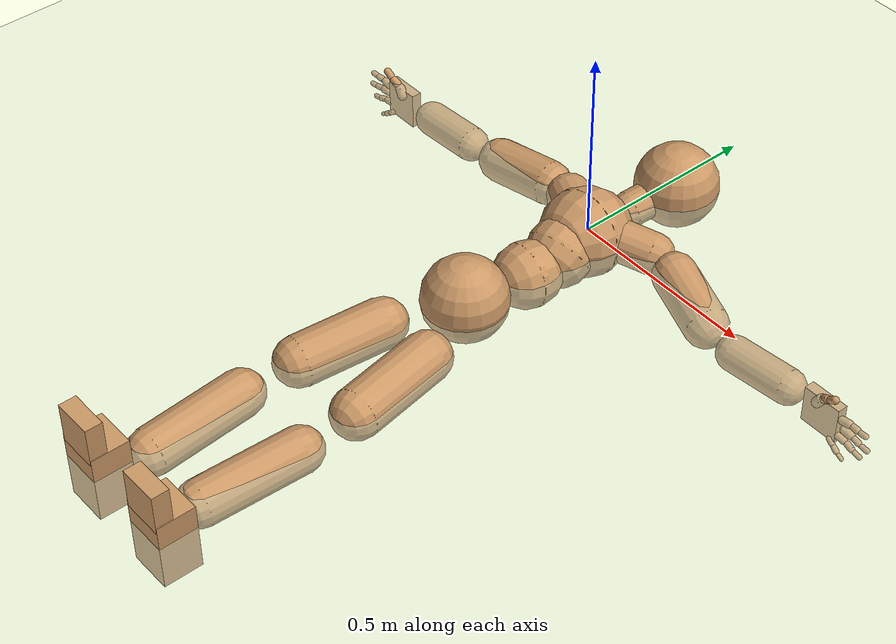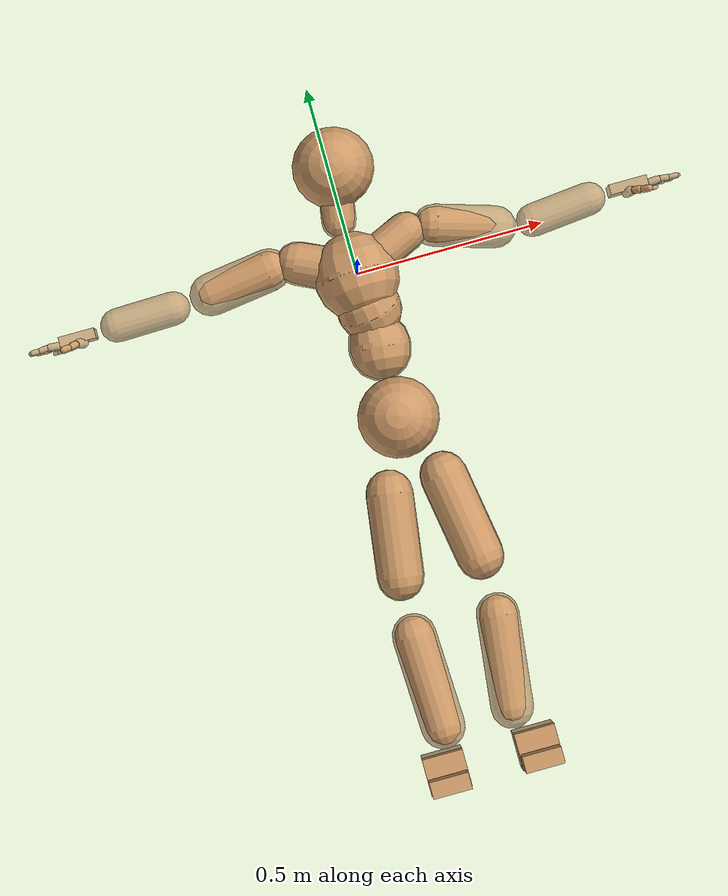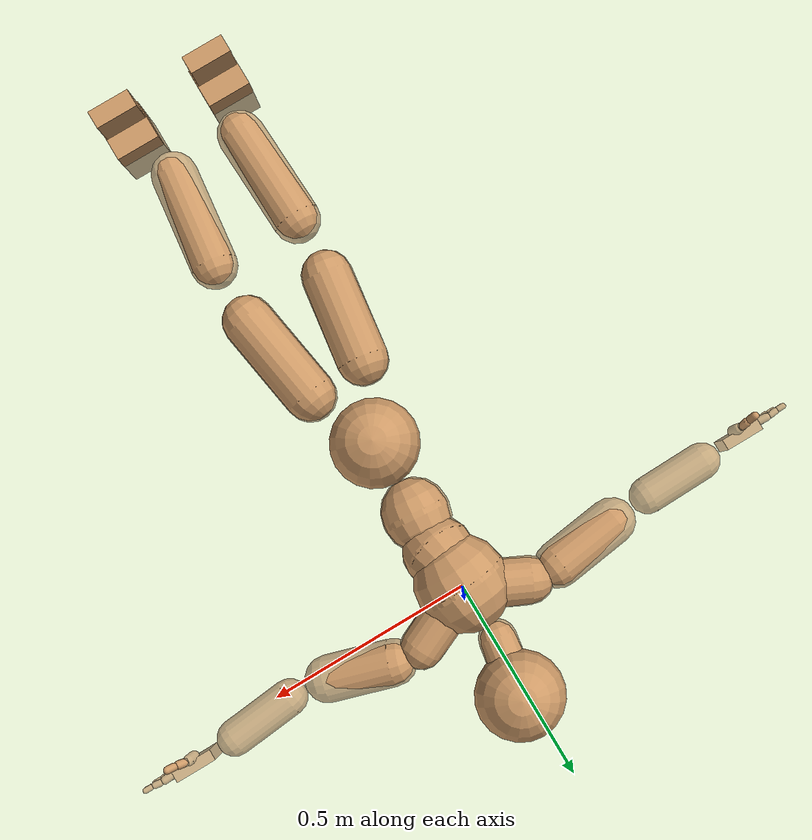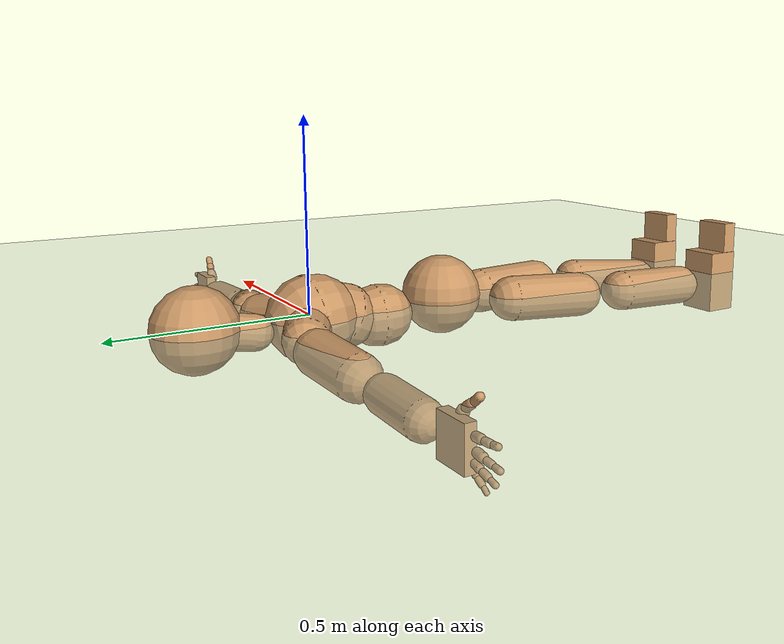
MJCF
<mujoco model="humanoid">
  <compiler coordinate="local"/>
  <default>
    <joint damping="0.0" armature="0.01" stiffness="0.0" limited="true"/>
    <geom conaffinity="1" condim="3" contype="7" margin="0.001" rgba="0.8 0.6 .4 1"/>
  </default>
  <asset>
    <texture type="skybox" builtin="gradient" rgb1=".4 .5 .6" rgb2="0 0 0" width="100" height="100"/>
    <texture builtin="flat" height="1278" mark="cross" markrgb="1 1 1" name="texgeom" random="0.01" rgb1="0.8 0.6 0.4" rgb2="0.8 0.6 0.4" type="cube" width="127"/>
    <texture builtin="checker" height="100" name="texplane" rgb1="0 0 0" rgb2="0.8 0.8 0.8" type="2d" width="100"/>
    <material name="MatPlane" reflectance="0.5" shininess="1" specular="1" texrepeat="60 60" texture="texplane"/>
    <material name="geom" texture="texgeom" texuniform="true"/>
  </asset>
  <worldbody>
    <light cutoff="100" diffuse="1 1 1" dir="-0 0 -1.3" directional="true" exponent="1" pos="0 0 1.3" specular=".1 .1 .1"/>
    <geom conaffinity="1" condim="3" name="floor" pos="0 0 0" rgba="0.8 0.9 0.8 1" size="100 100 .2" type="plane" material="MatPlane"/>
    <body name="Pelvis" pos="0.0031 -0.3909 0.0079">
      <freejoint name="Pelvis"/>
      <geom type="sphere" contype="1" conaffinity="1" density="4629.6296296296305" size="0.1076" pos="0.0000 0.0000 0.0000" name="Pelvis"/>
      <body name="L_Hip" pos="0.0609 -0.0996 -0.0253">
        <joint name="L_Hip_x" type="hinge" pos="0 0 0" axis="1 0 0" user="250 2.5 1 500 10 2" armature="0.01" range="-90.0000 90.0000" damping="0" stiffness="0"/>
        <joint name="L_Hip_y" type="hinge" pos="0 0 0" axis="0 1 0" user="250 2.5 1 500 10 2" armature="0.01" range="-90.0000 90.0000" damping="0" stiffness="0"/>
        <joint name="L_Hip_z" type="hinge" pos="0 0 0" axis="0 0 1" user="250 2.5 1 500 10 2" armature="0.01" range="-90.0000 90.0000" damping="0" stiffness="0"/>
        <geom type="capsule" contype="1" conaffinity="1" density="2040.816327" fromto="0.0122 -0.0765 -0.0008 0.0490 -0.3060 -0.0034" size="0.0635" name="L_Hip"/>
        <body name="L_Knee" pos="0.0612 -0.3826 -0.0042">
          <joint name="L_Knee_x" type="hinge" pos="0 0 0" axis="1 0 0" user="250 2.5 1 500 10 2" armature="0.01" range="-180.0000 180.0000" damping="0" stiffness="0"/>
          <joint name="L_Knee_y" type="hinge" pos="0 0 0" axis="0 1 0" user="250 2.5 1 500 10 2" armature="0.01" range="-5.6250 5.6250" damping="0" stiffness="0"/>
          <joint name="L_Knee_z" type="hinge" pos="0 0 0" axis="0 0 1" user="250 2.5 1 500 10 2" armature="0.01" range="-5.6250 5.6250" damping="0" stiffness="0"/>
          <geom type="capsule" contype="1" conaffinity="1" density="1234.567901" fromto="-0.0093 -0.0822 -0.0064 -0.0374 -0.3286 -0.0257" size="0.0565" name="L_Knee"/>
          <body name="L_Ankle" pos="-0.0467 -0.4108 -0.0322">
            <joint name="L_Ankle_x" type="hinge" pos="0 0 0" axis="1 0 0" user="150 2.5 1 500 10 2" armature="0.01" range="-90.0000 90.0000" damping="0" stiffness="0"/>
            <joint name="L_Ankle_y" type="hinge" pos="0 0 0" axis="0 1 0" user="150 2.5 1 500 10 2" armature="0.01" range="-90.0000 90.0000" damping="0" stiffness="0"/>
            <joint name="L_Ankle_z" type="hinge" pos="0 0 0" axis="0 0 1" user="150 2.5 1 500 10 2" armature="0.01" range="-90.0000 90.0000" damping="0" stiffness="0"/>
            <geom type="box" density="455.938905" pos="0.0450 -0.0298 0.0244" size="0.0542 0.049 0.091" quat="1.0000 0.0000 0.0000 0.0000" name="L_Ankle"/>
            <body name="L_Toe" pos="0.0522 -0.0601 0.1252">
              <joint name="L_Toe_x" type="hinge" pos="0 0 0" axis="1 0 0" user="150 1 1 500 1 1" armature="0.01" range="-90.0000 90.0000" damping="0" stiffness="0"/>
              <joint name="L_Toe_y" type="hinge" pos="0 0 0" axis="0 1 0" user="150 1 1 500 1 1" armature="0.01" range="-45.0000 45.0000" damping="0" stiffness="0"/>
              <joint name="L_Toe_z" type="hinge" pos="0 0 0" axis="0 0 1" user="150 1 1 500 1 1" armature="0.01" range="-45.0000 45.0000" damping="0" stiffness="0"/>
              <geom type="box" density="422.351352" pos="-0.0072 0.0032 0.0272" size="0.0518 0.022 0.053" quat="1.0000 0.0000 0.0000 0.0000" name="L_Toe"/>
            </body>
          </body>
        </body>
      </body>
      <body name="R_Hip" pos="-0.0658 -0.1125 -0.0188">
        <joint name="R_Hip_x" type="hinge" pos="0 0 0" axis="1 0 0" user="250 2.5 1 500 10 2" armature="0.01" range="-90.0000 90.0000" damping="0" stiffness="0"/>
        <joint name="R_Hip_y" type="hinge" pos="0 0 0" axis="0 1 0" user="250 2.5 1 500 10 2" armature="0.01" range="-90.0000 90.0000" damping="0" stiffness="0"/>
        <joint name="R_Hip_z" type="hinge" pos="0 0 0" axis="0 0 1" user="250 2.5 1 500 10 2" armature="0.01" range="-90.0000 90.0000" damping="0" stiffness="0"/>
        <geom type="capsule" contype="1" conaffinity="1" density="2040.816327" fromto="-0.0101 -0.0729 -0.0027 -0.0402 -0.2915 -0.0107" size="0.0628" name="R_Hip"/>
        <body name="R_Knee" pos="-0.0503 -0.3643 -0.0134">
          <joint name="R_Knee_x" type="hinge" pos="0 0 0" axis="1 0 0" user="250 2.5 1 500 10 2" armature="0.01" range="-180.0000 180.0000" damping="0" stiffness="0"/>
          <joint name="R_Knee_y" type="hinge" pos="0 0 0" axis="0 1 0" user="250 2.5 1 500 10 2" armature="0.01" range="-5.6250 5.6250" damping="0" stiffness="0"/>
          <joint name="R_Knee_z" type="hinge" pos="0 0 0" axis="0 0 1" user="250 2.5 1 500 10 2" armature="0.01" range="-5.6250 5.6250" damping="0" stiffness="0"/>
          <geom type="capsule" contype="1" conaffinity="1" density="1234.567901" fromto="0.0032 -0.0838 -0.0039 0.0128 -0.3350 -0.0157" size="0.0582" name="R_Knee"/>
          <body name="R_Ankle" pos="0.0159 -0.4188 -0.0196">
            <joint name="R_Ankle_x" type="hinge" pos="0 0 0" axis="1 0 0" user="150 1 1 500 10 2" armature="0.01" range="-90.0000 90.0000" damping="0" stiffness="0"/>
            <joint name="R_Ankle_y" type="hinge" pos="0 0 0" axis="0 1 0" user="150 1 1 500 10 2" armature="0.01" range="-90.0000 90.0000" damping="0" stiffness="0"/>
            <joint name="R_Ankle_z" type="hinge" pos="0 0 0" axis="0 0 1" user="150 1 1 500 10 2" armature="0.01" range="-90.0000 90.0000" damping="0" stiffness="0"/>
            <geom type="box" density="455.934924" pos="-0.0265 -0.0272 0.0145" size="0.0542 0.049 0.091" quat="1.0000 0.0000 0.0000 0.0000" name="R_Ankle"/>
            <body name="R_Toe" pos="-0.0423 -0.0602 0.126">
              <joint name="R_Toe_x" type="hinge" pos="0 0 0" axis="1 0 0" user="150 1 1 500 1 1" armature="0.01" range="-90.0000 90.0000" damping="0" stiffness="0"/>
              <joint name="R_Toe_y" type="hinge" pos="0 0 0" axis="0 1 0" user="150 1 1 500 1 1" armature="0.01" range="-45.0000 45.0000" damping="0" stiffness="0"/>
              <joint name="R_Toe_z" type="hinge" pos="0 0 0" axis="0 0 1" user="150 1 1 500 1 1" armature="0.01" range="-45.0000 45.0000" damping="0" stiffness="0"/>
              <geom type="box" density="422.346144" pos="0.0158 0.0059 0.0166" size="0.0518 0.022 0.053" quat="1.0000 0.0000 0.0000 0.0000" name="R_Toe"/>
            </body>
          </body>
        </body>
      </body>
      <body name="Torso" pos="-0.0032 0.1188 -0.032">
        <joint name="Torso_x" type="hinge" pos="0 0 0" axis="1 0 0" user="500 5 1 500 10 2" armature="0.01" range="-60.0000 60.0000" damping="0" stiffness="0"/>
        <joint name="Torso_y" type="hinge" pos="0 0 0" axis="0 1 0" user="500 5 1 500 10 2" armature="0.01" range="-60.0000 60.0000" damping="0" stiffness="0"/>
        <joint name="Torso_z" type="hinge" pos="0 0 0" axis="0 0 1" user="500 5 1 500 10 2" armature="0.01" range="-60.0000 60.0000" damping="0" stiffness="0"/>
        <geom type="capsule" contype="1" conaffinity="1" density="2040.816327" fromto="0.0054 0.0660 -0.0027 0.0066 0.0807 -0.0033" size="0.0826" name="Torso"/>
        <body name="Spine" pos="0.012 0.1467 -0.006">
          <joint name="Spine_x" type="hinge" pos="0 0 0" axis="1 0 0" user="500 5 1 500 10 2" armature="0.01" range="-60.0000 60.0000" damping="0" stiffness="0"/>
          <joint name="Spine_y" type="hinge" pos="0 0 0" axis="0 1 0" user="500 5 1 500 10 2" armature="0.01" range="-60.0000 60.0000" damping="0" stiffness="0"/>
          <joint name="Spine_z" type="hinge" pos="0 0 0" axis="0 0 1" user="500 5 1 500 10 2" armature="0.01" range="-60.0000 60.0000" damping="0" stiffness="0"/>
          <geom type="capsule" contype="1" conaffinity="1" density="2040.816327" fromto="-0.0056 0.0272 0.0135 -0.0069 0.0332 0.0166" size="0.0857" name="Spine"/>
          <body name="Chest" pos="-0.0125 0.0604 0.0301">
            <joint name="Chest_x" type="hinge" pos="0 0 0" axis="1 0 0" user="500 5 1 500 10 2" armature="0.01" range="-60.0000 60.0000" damping="0" stiffness="0"/>
            <joint name="Chest_y" type="hinge" pos="0 0 0" axis="0 1 0" user="500 5 1 500 10 2" armature="0.01" range="-60.0000 60.0000" damping="0" stiffness="0"/>
            <joint name="Chest_z" type="hinge" pos="0 0 0" axis="0 0 1" user="500 5 1 500 10 2" armature="0.01" range="-60.0000 60.0000" damping="0" stiffness="0"/>
            <geom type="capsule" contype="1" conaffinity="1" density="2040.816327" fromto="-0.0026 0.0541 -0.0064 -0.0032 0.0662 -0.0079" size="0.112" name="Chest"/>
            <body name="Neck" pos="-0.0141 0.1783 -0.028">
              <joint name="Neck_x" type="hinge" pos="0 0 0" axis="1 0 0" user="150 1 1 250 50 4" armature="0.01" range="-180.0000 180.0000" damping="0" stiffness="0"/>
              <joint name="Neck_y" type="hinge" pos="0 0 0" axis="0 1 0" user="150 1 1 250 50 4" armature="0.01" range="-180.0000 180.0000" damping="0" stiffness="0"/>
              <joint name="Neck_z" type="hinge" pos="0 0 0" axis="0 0 1" user="150 1 1 250 50 4" armature="0.01" range="-180.0000 180.0000" damping="0" stiffness="0"/>
              <geom type="capsule" contype="1" conaffinity="1" density="1000" fromto="0.0056 0.0345 0.0052 0.0222 0.1380 0.0207" size="0.0464" name="Neck"/>
              <body name="Head" pos="0.0278 0.1724 0.0258">
                <joint name="Head_x" type="hinge" pos="0 0 0" axis="1 0 0" user="150 1 1 250 50 4" armature="0.01" range="-90.0000 90.0000" damping="0" stiffness="0"/>
                <joint name="Head_y" type="hinge" pos="0 0 0" axis="0 1 0" user="150 1 1 250 50 4" armature="0.01" range="-90.0000 90.0000" damping="0" stiffness="0"/>
                <joint name="Head_z" type="hinge" pos="0 0 0" axis="0 0 1" user="150 1 1 250 50 4" armature="0.01" range="-90.0000 90.0000" damping="0" stiffness="0"/>
                <geom type="sphere" contype="1" conaffinity="1" density="1000" size="0.1078" pos="0.0000 0.0000 0.0000" name="Head"/>
              </body>
            </body>
            <body name="L_Thorax" pos="0.0489 0.0917 -0.0041">
              <joint name="L_Thorax_x" type="hinge" pos="0 0 0" axis="1 0 0" user="200 2 1 500 50 4" armature="0.01" range="-180.0000 180.0000" damping="0" stiffness="0"/>
              <joint name="L_Thorax_y" type="hinge" pos="0 0 0" axis="0 1 0" user="200 2 1 500 50 4" armature="0.01" range="-180.0000 180.0000" damping="0" stiffness="0"/>
              <joint name="L_Thorax_z" type="hinge" pos="0 0 0" axis="0 0 1" user="200 2 1 500 50 4" armature="0.01" range="-180.0000 180.0000" damping="0" stiffness="0"/>
              <geom type="capsule" contype="1" conaffinity="1" density="1000" fromto="0.0261 0.0119 -0.0037 0.1042 0.0475 -0.0149" size="0.0531" name="L_Thorax"/>
              <body name="L_Shoulder" pos="0.1303 0.0594 -0.0186">
                <joint name="L_Shoulder_x" type="hinge" pos="0 0 0" axis="1 0 0" user="200 2 1 500 50 4" armature="0.01" range="-180.0000 180.0000" damping="0" stiffness="0"/>
                <joint name="L_Shoulder_y" type="hinge" pos="0 0 0" axis="0 1 0" user="200 2 1 500 50 4" armature="0.01" range="-180.0000 180.0000" damping="0" stiffness="0"/>
                <joint name="L_Shoulder_z" type="hinge" pos="0 0 0" axis="0 0 1" user="200 2 1 500 50 4" armature="0.01" range="-180.0000 180.0000" damping="0" stiffness="0"/>
                <geom type="capsule" contype="1" conaffinity="1" density="1000" fromto="0.0510 -0.0147 -0.0093 0.2041 -0.0589 -0.0370" size="0.0568" name="L_Shoulder"/>
                <body name="L_Elbow" pos="0.2552 -0.0737 -0.0463">
                  <joint name="L_Elbow_x" type="hinge" pos="0 0 0" axis="1 0 0" user="150 1 1 150 10 2" armature="0.01" range="-720.0000 720.0000" damping="0" stiffness="0"/>
                  <joint name="L_Elbow_y" type="hinge" pos="0 0 0" axis="0 1 0" user="150 1 1 150 10 2" armature="0.01" range="-720.0000 720.0000" damping="0" stiffness="0"/>
                  <joint name="L_Elbow_z" type="hinge" pos="0 0 0" axis="0 0 1" user="150 1 1 150 10 2" armature="0.01" range="-720.0000 720.0000" damping="0" stiffness="0"/>
                  <geom type="capsule" contype="1" conaffinity="1" density="1000" fromto="0.0520 0.0052 0.0002 0.2081 0.0207 0.0010" size="0.0445" name="L_Elbow"/>
                  <body name="L_Wrist" pos="0.2601 0.0258 0.0012">
                    <joint name="L_Wrist_x" type="hinge" pos="0 0 0" axis="1 0 0" user="100 1 1 150 1 1" armature="0.01" range="-180.0000 180.0000" damping="0" stiffness="0"/>
                    <joint name="L_Wrist_y" type="hinge" pos="0 0 0" axis="0 1 0" user="100 1 1 150 1 1" armature="0.01" range="-180.0000 180.0000" damping="0" stiffness="0"/>
                    <joint name="L_Wrist_z" type="hinge" pos="0 0 0" axis="0 0 1" user="100 1 1 150 1 1" armature="0.01" range="-180.0000 180.0000" damping="0" stiffness="0"/>
                    <geom type="box" density="1218.213766" pos="0.0555 -0.0014 -0.0027" size="0.0512 0.0136 0.0501" quat="1.0000 0.0000 0.0000 0.0000" name="L_Wrist"/>
                    <body name="L_Index1" pos="0.1078 -0.0084 0.0215">
                      <joint name="L_Index1_x" type="hinge" pos="0 0 0" axis="1 0 0" user="100 10 1 150" armature="0.01" range="-180.0000 180.0000" damping="0" stiffness="0"/>
                      <joint name="L_Index1_y" type="hinge" pos="0 0 0" axis="0 1 0" user="100 10 1 150" armature="0.01" range="-180.0000 180.0000" damping="0" stiffness="0"/>
                      <joint name="L_Index1_z" type="hinge" pos="0 0 0" axis="0 0 1" user="100 10 1 150" armature="0.01" range="-180.0000 180.0000" damping="0" stiffness="0"/>
                      <geom type="capsule" contype="1" conaffinity="1" density="1000" fromto="0.0067 0.0005 0.0006 0.0267 0.0021 0.0023" size="0.01" name="L_Index1"/>
                      <body name="L_Index2" pos="0.0333 0.0026 0.0029">
                        <joint name="L_Index2_x" type="hinge" pos="0 0 0" axis="1 0 0" user="100 10 1 150" armature="0.01" range="-180.0000 180.0000" damping="0" stiffness="0"/>
                        <joint name="L_Index2_y" type="hinge" pos="0 0 0" axis="0 1 0" user="100 10 1 150" armature="0.01" range="-180.0000 180.0000" damping="0" stiffness="0"/>
                        <joint name="L_Index2_z" type="hinge" pos="0 0 0" axis="0 0 1" user="100 10 1 150" armature="0.01" range="-180.0000 180.0000" damping="0" stiffness="0"/>
                        <geom type="capsule" contype="1" conaffinity="1" density="1000" fromto="0.0047 -0.0005 -0.0001 0.0187 -0.0020 -0.0002" size="0.0082" name="L_Index2"/>
                        <body name="L_Index3" pos="0.0234 -0.0025 -0.0003">
                          <joint name="L_Index3_x" type="hinge" pos="0 0 0" axis="1 0 0" user="100 10 1 150" armature="0.01" range="-180.0000 180.0000" damping="0" stiffness="0"/>
                          <joint name="L_Index3_y" type="hinge" pos="0 0 0" axis="0 1 0" user="100 10 1 150" armature="0.01" range="-180.0000 180.0000" damping="0" stiffness="0"/>
                          <joint name="L_Index3_z" type="hinge" pos="0 0 0" axis="0 0 1" user="100 10 1 150" armature="0.01" range="-180.0000 180.0000" damping="0" stiffness="0"/>
                          <geom type="capsule" contype="1" conaffinity="1" density="1000" fromto="0.0051 -0.0001 0.0003 0.0203 -0.0004 0.0014" size="0.0069" name="L_Index3"/>
                        </body>
                      </body>
                    </body>
                    <body name="L_Middle1" pos="0.1159 -0.0058 -0.0039">
                      <joint name="L_Middle1_x" type="hinge" pos="0 0 0" axis="1 0 0" user="100 10 1 150" armature="0.01" range="-180.0000 180.0000" damping="0" stiffness="0"/>
                      <joint name="L_Middle1_y" type="hinge" pos="0 0 0" axis="0 1 0" user="100 10 1 150" armature="0.01" range="-180.0000 180.0000" damping="0" stiffness="0"/>
                      <joint name="L_Middle1_z" type="hinge" pos="0 0 0" axis="0 0 1" user="100 10 1 150" armature="0.01" range="-180.0000 180.0000" damping="0" stiffness="0"/>
                      <geom type="capsule" contype="1" conaffinity="1" density="1000" fromto="0.0064 0.0002 -0.0008 0.0256 0.0007 -0.0033" size="0.0103" name="L_Middle1"/>
                      <body name="L_Middle2" pos="0.032 0.0009 -0.0042">
                        <joint name="L_Middle2_x" type="hinge" pos="0 0 0" axis="1 0 0" user="100 10 1 150" armature="0.01" range="-180.0000 180.0000" damping="0" stiffness="0"/>
                        <joint name="L_Middle2_y" type="hinge" pos="0 0 0" axis="0 1 0" user="100 10 1 150" armature="0.01" range="-180.0000 180.0000" damping="0" stiffness="0"/>
                        <joint name="L_Middle2_z" type="hinge" pos="0 0 0" axis="0 0 1" user="100 10 1 150" armature="0.01" range="-180.0000 180.0000" damping="0" stiffness="0"/>
                        <geom type="capsule" contype="1" conaffinity="1" density="1000" fromto="0.0049 -0.0004 -0.0009 0.0195 -0.0018 -0.0035" size="0.0076" name="L_Middle2"/>
                        <body name="L_Middle3" pos="0.0244 -0.0022 -0.0044">
                          <joint name="L_Middle3_x" type="hinge" pos="0 0 0" axis="1 0 0" user="100 10 1 150" armature="0.01" range="-180.0000 180.0000" damping="0" stiffness="0"/>
                          <joint name="L_Middle3_y" type="hinge" pos="0 0 0" axis="0 1 0" user="100 10 1 150" armature="0.01" range="-180.0000 180.0000" damping="0" stiffness="0"/>
                          <joint name="L_Middle3_z" type="hinge" pos="0 0 0" axis="0 0 1" user="100 10 1 150" armature="0.01" range="-180.0000 180.0000" damping="0" stiffness="0"/>
                          <geom type="capsule" contype="1" conaffinity="1" density="1000" fromto="0.0053 -0.0000 -0.0005 0.0211 -0.0002 -0.0019" size="0.0066" name="L_Middle3"/>
                        </body>
                      </body>
                    </body>
                    <body name="L_Pinky1" pos="0.0892 -0.0148 -0.0472">
                      <joint name="L_Pinky1_x" type="hinge" pos="0 0 0" axis="1 0 0" user="100 10 1 150" armature="0.01" range="-180.0000 180.0000" damping="0" stiffness="0"/>
                      <joint name="L_Pinky1_y" type="hinge" pos="0 0 0" axis="0 1 0" user="100 10 1 150" armature="0.01" range="-180.0000 180.0000" damping="0" stiffness="0"/>
                      <joint name="L_Pinky1_z" type="hinge" pos="0 0 0" axis="0 0 1" user="100 10 1 150" armature="0.01" range="-180.0000 180.0000" damping="0" stiffness="0"/>
                      <geom type="capsule" contype="1" conaffinity="1" density="1000" fromto="0.0034 -0.0003 -0.0025 0.0135 -0.0011 -0.0101" size="0.0073" name="L_Pinky1"/>
                      <body name="L_Pinky2" pos="0.0168 -0.0014 -0.0126">
                        <joint name="L_Pinky2_x" type="hinge" pos="0 0 0" axis="1 0 0" user="100 10 1 150" armature="0.01" range="-180.0000 180.0000" damping="0" stiffness="0"/>
                        <joint name="L_Pinky2_y" type="hinge" pos="0 0 0" axis="0 1 0" user="100 10 1 150" armature="0.01" range="-180.0000 180.0000" damping="0" stiffness="0"/>
                        <joint name="L_Pinky2_z" type="hinge" pos="0 0 0" axis="0 0 1" user="100 10 1 150" armature="0.01" range="-180.0000 180.0000" damping="0" stiffness="0"/>
                        <geom type="capsule" contype="1" conaffinity="1" density="1000" fromto="0.0033 -0.0004 -0.0023 0.0132 -0.0016 -0.0092" size="0.007" name="L_Pinky2"/>
                        <body name="L_Pinky3" pos="0.0165 -0.002 -0.0115">
                          <joint name="L_Pinky3_x" type="hinge" pos="0 0 0" axis="1 0 0" user="100 10 1 150" armature="0.01" range="-180.0000 180.0000" damping="0" stiffness="0"/>
                          <joint name="L_Pinky3_y" type="hinge" pos="0 0 0" axis="0 1 0" user="100 10 1 150" armature="0.01" range="-180.0000 180.0000" damping="0" stiffness="0"/>
                          <joint name="L_Pinky3_z" type="hinge" pos="0 0 0" axis="0 0 1" user="100 10 1 150" armature="0.01" range="-180.0000 180.0000" damping="0" stiffness="0"/>
                          <geom type="capsule" contype="1" conaffinity="1" density="1000" fromto="0.0037 -0.0000 -0.0019 0.0148 -0.0000 -0.0076" size="0.0052" name="L_Pinky3"/>
                        </body>
                      </body>
                    </body>
                    <body name="L_Ring1" pos="0.1035 -0.009 -0.0294">
                      <joint name="L_Ring1_x" type="hinge" pos="0 0 0" axis="1 0 0" user="100 10 1 150" armature="0.01" range="-180.0000 180.0000" damping="0" stiffness="0"/>
                      <joint name="L_Ring1_y" type="hinge" pos="0 0 0" axis="0 1 0" user="100 10 1 150" armature="0.01" range="-180.0000 180.0000" damping="0" stiffness="0"/>
                      <joint name="L_Ring1_z" type="hinge" pos="0 0 0" axis="0 0 1" user="100 10 1 150" armature="0.01" range="-180.0000 180.0000" damping="0" stiffness="0"/>
                      <geom type="capsule" contype="1" conaffinity="1" density="1000" fromto="0.0060 0.0003 -0.0011 0.0238 0.0013 -0.0044" size="0.0087" name="L_Ring1"/>
                      <body name="L_Ring2" pos="0.0298 0.0016 -0.0055">
                        <joint name="L_Ring2_x" type="hinge" pos="0 0 0" axis="1 0 0" user="100 10 1 150" armature="0.01" range="-180.0000 180.0000" damping="0" stiffness="0"/>
                        <joint name="L_Ring2_y" type="hinge" pos="0 0 0" axis="0 1 0" user="100 10 1 150" armature="0.01" range="-180.0000 180.0000" damping="0" stiffness="0"/>
                        <joint name="L_Ring2_z" type="hinge" pos="0 0 0" axis="0 0 1" user="100 10 1 150" armature="0.01" range="-180.0000 180.0000" damping="0" stiffness="0"/>
                        <geom type="capsule" contype="1" conaffinity="1" density="1000" fromto="0.0048 -0.0003 -0.0015 0.0191 -0.0014 -0.0060" size="0.008" name="L_Ring2"/>
                        <body name="L_Ring3" pos="0.0239 -0.0017 -0.0074">
                          <joint name="L_Ring3_x" type="hinge" pos="0 0 0" axis="1 0 0" user="100 10 1 150" armature="0.01" range="-180.0000 180.0000" damping="0" stiffness="0"/>
                          <joint name="L_Ring3_y" type="hinge" pos="0 0 0" axis="0 1 0" user="100 10 1 150" armature="0.01" range="-180.0000 180.0000" damping="0" stiffness="0"/>
                          <joint name="L_Ring3_z" type="hinge" pos="0 0 0" axis="0 0 1" user="100 10 1 150" armature="0.01" range="-180.0000 180.0000" damping="0" stiffness="0"/>
                          <geom type="capsule" contype="1" conaffinity="1" density="1000" fromto="0.0052 0.0001 -0.0011 0.0207 0.0002 -0.0044" size="0.0062" name="L_Ring3"/>
                        </body>
                      </body>
                    </body>
                    <body name="L_Thumb1" pos="0.0426 -0.0198 0.0289">
                      <joint name="L_Thumb1_x" type="hinge" pos="0 0 0" axis="1 0 0" user="100 10 1 150" armature="0.01" range="-180.0000 180.0000" damping="0" stiffness="0"/>
                      <joint name="L_Thumb1_y" type="hinge" pos="0 0 0" axis="0 1 0" user="100 10 1 150" armature="0.01" range="-180.0000 180.0000" damping="0" stiffness="0"/>
                      <joint name="L_Thumb1_z" type="hinge" pos="0 0 0" axis="0 0 1" user="100 10 1 150" armature="0.01" range="-180.0000 180.0000" damping="0" stiffness="0"/>
                      <geom type="capsule" contype="1" conaffinity="1" density="1000" fromto="0.0036 0.0003 0.0054 0.0142 0.0012 0.0216" size="0.0132" name="L_Thumb1"/>
                      <body name="L_Thumb2" pos="0.0178 0.0014 0.027">
                        <joint name="L_Thumb2_x" type="hinge" pos="0 0 0" axis="1 0 0" user="100 10 1 150" armature="0.01" range="-180.0000 180.0000" damping="0" stiffness="0"/>
                        <joint name="L_Thumb2_y" type="hinge" pos="0 0 0" axis="0 1 0" user="100 10 1 150" armature="0.01" range="-180.0000 180.0000" damping="0" stiffness="0"/>
                        <joint name="L_Thumb2_z" type="hinge" pos="0 0 0" axis="0 0 1" user="100 10 1 150" armature="0.01" range="-180.0000 180.0000" damping="0" stiffness="0"/>
                        <geom type="capsule" contype="1" conaffinity="1" density="1000" fromto="0.0043 -0.0011 0.0033 0.0173 -0.0044 0.0131" size="0.0105" name="L_Thumb2"/>
                        <body name="L_Thumb3" pos="0.0216 -0.0055 0.0163">
                          <joint name="L_Thumb3_x" type="hinge" pos="0 0 0" axis="1 0 0" user="100 10 1 150" armature="0.01" range="-180.0000 180.0000" damping="0" stiffness="0"/>
                          <joint name="L_Thumb3_y" type="hinge" pos="0 0 0" axis="0 1 0" user="100 10 1 150" armature="0.01" range="-180.0000 180.0000" damping="0" stiffness="0"/>
                          <joint name="L_Thumb3_z" type="hinge" pos="0 0 0" axis="0 0 1" user="100 10 1 150" armature="0.01" range="-180.0000 180.0000" damping="0" stiffness="0"/>
                          <geom type="capsule" contype="1" conaffinity="1" density="1000" fromto="0.0047 -0.0007 0.0037 0.0189 -0.0028 0.0147" size="0.0094" name="L_Thumb3"/>
                        </body>
                      </body>
                    </body>
                  </body>
                </body>
              </body>
            </body>
            <body name="R_Thorax" pos="-0.0523 0.0908 -0.0108">
              <joint name="R_Thorax_x" type="hinge" pos="0 0 0" axis="1 0 0" user="200 2 1 150 10 2" armature="0.01" range="-180.0000 180.0000" damping="0" stiffness="0"/>
              <joint name="R_Thorax_y" type="hinge" pos="0 0 0" axis="0 1 0" user="200 2 1 150 10 2" armature="0.01" range="-180.0000 180.0000" damping="0" stiffness="0"/>
              <joint name="R_Thorax_z" type="hinge" pos="0 0 0" axis="0 0 1" user="200 2 1 150 10 2" armature="0.01" range="-180.0000 180.0000" damping="0" stiffness="0"/>
              <geom type="capsule" contype="1" conaffinity="1" density="1000" fromto="-0.0225 0.0110 -0.0032 -0.0901 0.0439 -0.0127" size="0.0583" name="R_Thorax"/>
              <body name="R_Shoulder" pos="-0.1126 0.0549 -0.0159">
                <joint name="R_Shoulder_x" type="hinge" pos="0 0 0" axis="1 0 0" user="200 2 1 250 10 2" armature="0.01" range="-180.0000 180.0000" damping="0" stiffness="0"/>
                <joint name="R_Shoulder_y" type="hinge" pos="0 0 0" axis="0 1 0" user="200 2 1 250 10 2" armature="0.01" range="-180.0000 180.0000" damping="0" stiffness="0"/>
                <joint name="R_Shoulder_z" type="hinge" pos="0 0 0" axis="0 0 1" user="200 2 1 250 10 2" armature="0.01" range="-180.0000 180.0000" damping="0" stiffness="0"/>
                <geom type="capsule" contype="1" conaffinity="1" density="1000" fromto="-0.0546 -0.0068 -0.0058 -0.2186 -0.0273 -0.0231" size="0.0567" name="R_Shoulder"/>
                <body name="R_Elbow" pos="-0.2732 -0.0342 -0.0289">
                  <joint name="R_Elbow_x" type="hinge" pos="0 0 0" axis="1 0 0" user="150 1 1 150 10 2" armature="0.01" range="-720.0000 720.0000" damping="0" stiffness="0"/>
                  <joint name="R_Elbow_y" type="hinge" pos="0 0 0" axis="0 1 0" user="150 1 1 150 10 2" armature="0.01" range="-720.0000 720.0000" damping="0" stiffness="0"/>
                  <joint name="R_Elbow_z" type="hinge" pos="0 0 0" axis="0 0 1" user="150 1 1 150 10 2" armature="0.01" range="-720.0000 720.0000" damping="0" stiffness="0"/>
                  <geom type="capsule" contype="1" conaffinity="1" density="1000" fromto="-0.0514 -0.0010 -0.0024 -0.2057 -0.0039 -0.0097" size="0.0448" name="R_Elbow"/>
                  <body name="R_Wrist" pos="-0.2572 -0.0049 -0.0121">
                    <joint name="R_Wrist_x" type="hinge" pos="0 0 0" axis="1 0 0" user="100 1 1 150 1 1" armature="0.01" range="-180.0000 180.0000" damping="0" stiffness="0"/>
                    <joint name="R_Wrist_y" type="hinge" pos="0 0 0" axis="0 1 0" user="100 1 1 150 1 1" armature="0.01" range="-180.0000 180.0000" damping="0" stiffness="0"/>
                    <joint name="R_Wrist_z" type="hinge" pos="0 0 0" axis="0 0 1" user="100 1 1 150 1 1" armature="0.01" range="-180.0000 180.0000" damping="0" stiffness="0"/>
                    <geom type="box" density="1245.073739" pos="-0.0569 -0.0047 -0.0027" size="0.0484 0.0136 0.0501" quat="1.0000 0.0000 0.0000 0.0000" name="R_Wrist"/>
                    <body name="R_Index1" pos="-0.1058 -0.0117 0.0215">
                      <joint name="R_Index1_x" type="hinge" pos="0 0 0" axis="1 0 0" user="100 10 1 150" armature="0.01" range="-180.0000 180.0000" damping="0" stiffness="0"/>
                      <joint name="R_Index1_y" type="hinge" pos="0 0 0" axis="0 1 0" user="100 10 1 150" armature="0.01" range="-180.0000 180.0000" damping="0" stiffness="0"/>
                      <joint name="R_Index1_z" type="hinge" pos="0 0 0" axis="0 0 1" user="100 10 1 150" armature="0.01" range="-180.0000 180.0000" damping="0" stiffness="0"/>
                      <geom type="capsule" contype="1" conaffinity="1" density="1000" fromto="-0.0067 0.0005 0.0006 -0.0267 0.0021 0.0023" size="0.01" name="R_Index1"/>
                      <body name="R_Index2" pos="-0.0333 0.0026 0.0029">
                        <joint name="R_Index2_x" type="hinge" pos="0 0 0" axis="1 0 0" user="100 10 1 150" armature="0.01" range="-180.0000 180.0000" damping="0" stiffness="0"/>
                        <joint name="R_Index2_y" type="hinge" pos="0 0 0" axis="0 1 0" user="100 10 1 150" armature="0.01" range="-180.0000 180.0000" damping="0" stiffness="0"/>
                        <joint name="R_Index2_z" type="hinge" pos="0 0 0" axis="0 0 1" user="100 10 1 150" armature="0.01" range="-180.0000 180.0000" damping="0" stiffness="0"/>
                        <geom type="capsule" contype="1" conaffinity="1" density="1000" fromto="-0.0047 -0.0005 -0.0001 -0.0187 -0.0020 -0.0002" size="0.0082" name="R_Index2"/>
                        <body name="R_Index3" pos="-0.0234 -0.0025 -0.0003">
                          <joint name="R_Index3_x" type="hinge" pos="0 0 0" axis="1 0 0" user="100 10 1 150" armature="0.01" range="-180.0000 180.0000" damping="0" stiffness="0"/>
                          <joint name="R_Index3_y" type="hinge" pos="0 0 0" axis="0 1 0" user="100 10 1 150" armature="0.01" range="-180.0000 180.0000" damping="0" stiffness="0"/>
                          <joint name="R_Index3_z" type="hinge" pos="0 0 0" axis="0 0 1" user="100 10 1 150" armature="0.01" range="-180.0000 180.0000" damping="0" stiffness="0"/>
                          <geom type="capsule" contype="1" conaffinity="1" density="1000" fromto="-0.0043 -0.0001 0.0003 -0.0171 -0.0004 0.0014" size="0.0072" name="R_Index3"/>
                        </body>
                      </body>
                    </body>
                    <body name="R_Middle1" pos="-0.114 -0.0091 -0.004">
                      <joint name="R_Middle1_x" type="hinge" pos="0 0 0" axis="1 0 0" user="100 10 1 150" armature="0.01" range="-180.0000 180.0000" damping="0" stiffness="0"/>
                      <joint name="R_Middle1_y" type="hinge" pos="0 0 0" axis="0 1 0" user="100 10 1 150" armature="0.01" range="-180.0000 180.0000" damping="0" stiffness="0"/>
                      <joint name="R_Middle1_z" type="hinge" pos="0 0 0" axis="0 0 1" user="100 10 1 150" armature="0.01" range="-180.0000 180.0000" damping="0" stiffness="0"/>
                      <geom type="capsule" contype="1" conaffinity="1" density="1000" fromto="-0.0064 0.0002 -0.0008 -0.0256 0.0007 -0.0033" size="0.0103" name="R_Middle1"/>
                      <body name="R_Middle2" pos="-0.032 0.0009 -0.0042">
                        <joint name="R_Middle2_x" type="hinge" pos="0 0 0" axis="1 0 0" user="100 10 1 150" armature="0.01" range="-180.0000 180.0000" damping="0" stiffness="0"/>
                        <joint name="R_Middle2_y" type="hinge" pos="0 0 0" axis="0 1 0" user="100 10 1 150" armature="0.01" range="-180.0000 180.0000" damping="0" stiffness="0"/>
                        <joint name="R_Middle2_z" type="hinge" pos="0 0 0" axis="0 0 1" user="100 10 1 150" armature="0.01" range="-180.0000 180.0000" damping="0" stiffness="0"/>
                        <geom type="capsule" contype="1" conaffinity="1" density="1000" fromto="-0.0049 -0.0004 -0.0009 -0.0195 -0.0018 -0.0035" size="0.0076" name="R_Middle2"/>
                        <body name="R_Middle3" pos="-0.0244 -0.0022 -0.0044">
                          <joint name="R_Middle3_x" type="hinge" pos="0 0 0" axis="1 0 0" user="100 10 1 150" armature="0.01" range="-180.0000 180.0000" damping="0" stiffness="0"/>
                          <joint name="R_Middle3_y" type="hinge" pos="0 0 0" axis="0 1 0" user="100 10 1 150" armature="0.01" range="-180.0000 180.0000" damping="0" stiffness="0"/>
                          <joint name="R_Middle3_z" type="hinge" pos="0 0 0" axis="0 0 1" user="100 10 1 150" armature="0.01" range="-180.0000 180.0000" damping="0" stiffness="0"/>
                          <geom type="capsule" contype="1" conaffinity="1" density="1000" fromto="-0.0045 -0.0000 -0.0005 -0.0179 -0.0002 -0.0019" size="0.0068" name="R_Middle3"/>
                        </body>
                      </body>
                    </body>
                    <body name="R_Pinky1" pos="-0.0873 -0.0181 -0.0473">
                      <joint name="R_Pinky1_x" type="hinge" pos="0 0 0" axis="1 0 0" user="100 10 1 150" armature="0.01" range="-180.0000 180.0000" damping="0" stiffness="0"/>
                      <joint name="R_Pinky1_y" type="hinge" pos="0 0 0" axis="0 1 0" user="100 10 1 150" armature="0.01" range="-180.0000 180.0000" damping="0" stiffness="0"/>
                      <joint name="R_Pinky1_z" type="hinge" pos="0 0 0" axis="0 0 1" user="100 10 1 150" armature="0.01" range="-180.0000 180.0000" damping="0" stiffness="0"/>
                      <geom type="capsule" contype="1" conaffinity="1" density="1000" fromto="-0.0034 -0.0003 -0.0025 -0.0135 -0.0011 -0.0101" size="0.0073" name="R_Pinky1"/>
                      <body name="R_Pinky2" pos="-0.0168 -0.0014 -0.0126">
                        <joint name="R_Pinky2_x" type="hinge" pos="0 0 0" axis="1 0 0" user="100 10 1 150" armature="0.01" range="-180.0000 180.0000" damping="0" stiffness="0"/>
                        <joint name="R_Pinky2_y" type="hinge" pos="0 0 0" axis="0 1 0" user="100 10 1 150" armature="0.01" range="-180.0000 180.0000" damping="0" stiffness="0"/>
                        <joint name="R_Pinky2_z" type="hinge" pos="0 0 0" axis="0 0 1" user="100 10 1 150" armature="0.01" range="-180.0000 180.0000" damping="0" stiffness="0"/>
                        <geom type="capsule" contype="1" conaffinity="1" density="1000" fromto="-0.0033 -0.0004 -0.0023 -0.0132 -0.0016 -0.0092" size="0.007" name="R_Pinky2"/>
                        <body name="R_Pinky3" pos="-0.0165 -0.002 -0.0115">
                          <joint name="R_Pinky3_x" type="hinge" pos="0 0 0" axis="1 0 0" user="100 10 1 150" armature="0.01" range="-180.0000 180.0000" damping="0" stiffness="0"/>
                          <joint name="R_Pinky3_y" type="hinge" pos="0 0 0" axis="0 1 0" user="100 10 1 150" armature="0.01" range="-180.0000 180.0000" damping="0" stiffness="0"/>
                          <joint name="R_Pinky3_z" type="hinge" pos="0 0 0" axis="0 0 1" user="100 10 1 150" armature="0.01" range="-180.0000 180.0000" damping="0" stiffness="0"/>
                          <geom type="capsule" contype="1" conaffinity="1" density="1000" fromto="-0.0029 -0.0000 -0.0019 -0.0116 -0.0000 -0.0076" size="0.0055" name="R_Pinky3"/>
                        </body>
                      </body>
                    </body>
                    <body name="R_Ring1" pos="-0.1015 -0.0123 -0.0295">
                      <joint name="R_Ring1_x" type="hinge" pos="0 0 0" axis="1 0 0" user="100 10 1 150" armature="0.01" range="-180.0000 180.0000" damping="0" stiffness="0"/>
                      <joint name="R_Ring1_y" type="hinge" pos="0 0 0" axis="0 1 0" user="100 10 1 150" armature="0.01" range="-180.0000 180.0000" damping="0" stiffness="0"/>
                      <joint name="R_Ring1_z" type="hinge" pos="0 0 0" axis="0 0 1" user="100 10 1 150" armature="0.01" range="-180.0000 180.0000" damping="0" stiffness="0"/>
                      <geom type="capsule" contype="1" conaffinity="1" density="1000" fromto="-0.0060 0.0003 -0.0011 -0.0238 0.0013 -0.0044" size="0.0087" name="R_Ring1"/>
                      <body name="R_Ring2" pos="-0.0298 0.0016 -0.0055">
                        <joint name="R_Ring2_x" type="hinge" pos="0 0 0" axis="1 0 0" user="100 10 1 150" armature="0.01" range="-180.0000 180.0000" damping="0" stiffness="0"/>
                        <joint name="R_Ring2_y" type="hinge" pos="0 0 0" axis="0 1 0" user="100 10 1 150" armature="0.01" range="-180.0000 180.0000" damping="0" stiffness="0"/>
                        <joint name="R_Ring2_z" type="hinge" pos="0 0 0" axis="0 0 1" user="100 10 1 150" armature="0.01" range="-180.0000 180.0000" damping="0" stiffness="0"/>
                        <geom type="capsule" contype="1" conaffinity="1" density="1000" fromto="-0.0048 -0.0003 -0.0015 -0.0191 -0.0014 -0.0060" size="0.008" name="R_Ring2"/>
                        <body name="R_Ring3" pos="-0.0239 -0.0017 -0.0074">
                          <joint name="R_Ring3_x" type="hinge" pos="0 0 0" axis="1 0 0" user="100 10 1 150" armature="0.01" range="-180.0000 180.0000" damping="0" stiffness="0"/>
                          <joint name="R_Ring3_y" type="hinge" pos="0 0 0" axis="0 1 0" user="100 10 1 150" armature="0.01" range="-180.0000 180.0000" damping="0" stiffness="0"/>
                          <joint name="R_Ring3_z" type="hinge" pos="0 0 0" axis="0 0 1" user="100 10 1 150" armature="0.01" range="-180.0000 180.0000" damping="0" stiffness="0"/>
                          <geom type="capsule" contype="1" conaffinity="1" density="1000" fromto="-0.0044 0.0001 -0.0011 -0.0175 0.0002 -0.0044" size="0.0064" name="R_Ring3"/>
                        </body>
                      </body>
                    </body>
                    <body name="R_Thumb1" pos="-0.0406 -0.0231 0.0289">
                      <joint name="R_Thumb1_x" type="hinge" pos="0 0 0" axis="1 0 0" user="100 10 1 150" armature="0.01" range="-180.0000 180.0000" damping="0" stiffness="0"/>
                      <joint name="R_Thumb1_y" type="hinge" pos="0 0 0" axis="0 1 0" user="100 10 1 150" armature="0.01" range="-180.0000 180.0000" damping="0" stiffness="0"/>
                      <joint name="R_Thumb1_z" type="hinge" pos="0 0 0" axis="0 0 1" user="100 10 1 150" armature="0.01" range="-180.0000 180.0000" damping="0" stiffness="0"/>
                      <geom type="capsule" contype="1" conaffinity="1" density="1000" fromto="-0.0036 0.0003 0.0054 -0.0142 0.0012 0.0216" size="0.0132" name="R_Thumb1"/>
                      <body name="R_Thumb2" pos="-0.0178 0.0014 0.027">
                        <joint name="R_Thumb2_x" type="hinge" pos="0 0 0" axis="1 0 0" user="100 10 1 150" armature="0.01" range="-180.0000 180.0000" damping="0" stiffness="0"/>
                        <joint name="R_Thumb2_y" type="hinge" pos="0 0 0" axis="0 1 0" user="100 10 1 150" armature="0.01" range="-180.0000 180.0000" damping="0" stiffness="0"/>
                        <joint name="R_Thumb2_z" type="hinge" pos="0 0 0" axis="0 0 1" user="100 10 1 150" armature="0.01" range="-180.0000 180.0000" damping="0" stiffness="0"/>
                        <geom type="capsule" contype="1" conaffinity="1" density="1000" fromto="-0.0043 -0.0011 0.0033 -0.0173 -0.0044 0.0131" size="0.0105" name="R_Thumb2"/>
                        <body name="R_Thumb3" pos="-0.0216 -0.0055 0.0163">
                          <joint name="R_Thumb3_x" type="hinge" pos="0 0 0" axis="1 0 0" user="100 10 1 150" armature="0.01" range="-180.0000 180.0000" damping="0" stiffness="0"/>
                          <joint name="R_Thumb3_y" type="hinge" pos="0 0 0" axis="0 1 0" user="100 10 1 150" armature="0.01" range="-180.0000 180.0000" damping="0" stiffness="0"/>
                          <joint name="R_Thumb3_z" type="hinge" pos="0 0 0" axis="0 0 1" user="100 10 1 150" armature="0.01" range="-180.0000 180.0000" damping="0" stiffness="0"/>
                          <geom type="capsule" contype="1" conaffinity="1" density="1000" fromto="-0.0039 -0.0007 0.0037 -0.0157 -0.0028 0.0147" size="0.0096" name="R_Thumb3"/>
                        </body>
                      </body>
                    </body>
                  </body>
                </body>
              </body>
            </body>
          </body>
        </body>
      </body>
    </body>
  </worldbody>
  <actuator>
    <motor name="L_Hip_x" joint="L_Hip_x" gear="1"/>
    <motor name="L_Hip_y" joint="L_Hip_y" gear="1"/>
    <motor name="L_Hip_z" joint="L_Hip_z" gear="1"/>
    <motor name="L_Knee_x" joint="L_Knee_x" gear="1"/>
    <motor name="L_Knee_y" joint="L_Knee_y" gear="1"/>
    <motor name="L_Knee_z" joint="L_Knee_z" gear="1"/>
    <motor name="L_Ankle_x" joint="L_Ankle_x" gear="1"/>
    <motor name="L_Ankle_y" joint="L_Ankle_y" gear="1"/>
    <motor name="L_Ankle_z" joint="L_Ankle_z" gear="1"/>
    <motor name="L_Toe_x" joint="L_Toe_x" gear="1"/>
    <motor name="L_Toe_y" joint="L_Toe_y" gear="1"/>
    <motor name="L_Toe_z" joint="L_Toe_z" gear="1"/>
    <motor name="R_Hip_x" joint="R_Hip_x" gear="1"/>
    <motor name="R_Hip_y" joint="R_Hip_y" gear="1"/>
    <motor name="R_Hip_z" joint="R_Hip_z" gear="1"/>
    <motor name="R_Knee_x" joint="R_Knee_x" gear="1"/>
    <motor name="R_Knee_y" joint="R_Knee_y" gear="1"/>
    <motor name="R_Knee_z" joint="R_Knee_z" gear="1"/>
    <motor name="R_Ankle_x" joint="R_Ankle_x" gear="1"/>
    <motor name="R_Ankle_y" joint="R_Ankle_y" gear="1"/>
    <motor name="R_Ankle_z" joint="R_Ankle_z" gear="1"/>
    <motor name="R_Toe_x" joint="R_Toe_x" gear="1"/>
    <motor name="R_Toe_y" joint="R_Toe_y" gear="1"/>
    <motor name="R_Toe_z" joint="R_Toe_z" gear="1"/>
    <motor name="Torso_x" joint="Torso_x" gear="1"/>
    <motor name="Torso_y" joint="Torso_y" gear="1"/>
    <motor name="Torso_z" joint="Torso_z" gear="1"/>
    <motor name="Spine_x" joint="Spine_x" gear="1"/>
    <motor name="Spine_y" joint="Spine_y" gear="1"/>
    <motor name="Spine_z" joint="Spine_z" gear="1"/>
    <motor name="Chest_x" joint="Chest_x" gear="1"/>
    <motor name="Chest_y" joint="Chest_y" gear="1"/>
    <motor name="Chest_z" joint="Chest_z" gear="1"/>
    <motor name="Neck_x" joint="Neck_x" gear="1"/>
    <motor name="Neck_y" joint="Neck_y" gear="1"/>
    <motor name="Neck_z" joint="Neck_z" gear="1"/>
    <motor name="Head_x" joint="Head_x" gear="1"/>
    <motor name="Head_y" joint="Head_y" gear="1"/>
    <motor name="Head_z" joint="Head_z" gear="1"/>
    <motor name="L_Thorax_x" joint="L_Thorax_x" gear="1"/>
    <motor name="L_Thorax_y" joint="L_Thorax_y" gear="1"/>
    <motor name="L_Thorax_z" joint="L_Thorax_z" gear="1"/>
    <motor name="L_Shoulder_x" joint="L_Shoulder_x" gear="1"/>
    <motor name="L_Shoulder_y" joint="L_Shoulder_y" gear="1"/>
    <motor name="L_Shoulder_z" joint="L_Shoulder_z" gear="1"/>
    <motor name="L_Elbow_x" joint="L_Elbow_x" gear="1"/>
    <motor name="L_Elbow_y" joint="L_Elbow_y" gear="1"/>
    <motor name="L_Elbow_z" joint="L_Elbow_z" gear="1"/>
    <motor name="L_Wrist_x" joint="L_Wrist_x" gear="1"/>
    <motor name="L_Wrist_y" joint="L_Wrist_y" gear="1"/>
    <motor name="L_Wrist_z" joint="L_Wrist_z" gear="1"/>
    <motor name="L_Index1_x" joint="L_Index1_x" gear="1"/>
    <motor name="L_Index1_y" joint="L_Index1_y" gear="1"/>
    <motor name="L_Index1_z" joint="L_Index1_z" gear="1"/>
    <motor name="L_Index2_x" joint="L_Index2_x" gear="1"/>
    <motor name="L_Index2_y" joint="L_Index2_y" gear="1"/>
    <motor name="L_Index2_z" joint="L_Index2_z" gear="1"/>
    <motor name="L_Index3_x" joint="L_Index3_x" gear="1"/>
    <motor name="L_Index3_y" joint="L_Index3_y" gear="1"/>
    <motor name="L_Index3_z" joint="L_Index3_z" gear="1"/>
    <motor name="L_Middle1_x" joint="L_Middle1_x" gear="1"/>
    <motor name="L_Middle1_y" joint="L_Middle1_y" gear="1"/>
    <motor name="L_Middle1_z" joint="L_Middle1_z" gear="1"/>
    <motor name="L_Middle2_x" joint="L_Middle2_x" gear="1"/>
    <motor name="L_Middle2_y" joint="L_Middle2_y" gear="1"/>
    <motor name="L_Middle2_z" joint="L_Middle2_z" gear="1"/>
    <motor name="L_Middle3_x" joint="L_Middle3_x" gear="1"/>
    <motor name="L_Middle3_y" joint="L_Middle3_y" gear="1"/>
    <motor name="L_Middle3_z" joint="L_Middle3_z" gear="1"/>
    <motor name="L_Pinky1_x" joint="L_Pinky1_x" gear="1"/>
    <motor name="L_Pinky1_y" joint="L_Pinky1_y" gear="1"/>
    <motor name="L_Pinky1_z" joint="L_Pinky1_z" gear="1"/>
    <motor name="L_Pinky2_x" joint="L_Pinky2_x" gear="1"/>
    <motor name="L_Pinky2_y" joint="L_Pinky2_y" gear="1"/>
    <motor name="L_Pinky2_z" joint="L_Pinky2_z" gear="1"/>
    <motor name="L_Pinky3_x" joint="L_Pinky3_x" gear="1"/>
    <motor name="L_Pinky3_y" joint="L_Pinky3_y" gear="1"/>
    <motor name="L_Pinky3_z" joint="L_Pinky3_z" gear="1"/>
    <motor name="L_Ring1_x" joint="L_Ring1_x" gear="1"/>
    <motor name="L_Ring1_y" joint="L_Ring1_y" gear="1"/>
    <motor name="L_Ring1_z" joint="L_Ring1_z" gear="1"/>
    <motor name="L_Ring2_x" joint="L_Ring2_x" gear="1"/>
    <motor name="L_Ring2_y" joint="L_Ring2_y" gear="1"/>
    <motor name="L_Ring2_z" joint="L_Ring2_z" gear="1"/>
    <motor name="L_Ring3_x" joint="L_Ring3_x" gear="1"/>
    <motor name="L_Ring3_y" joint="L_Ring3_y" gear="1"/>
    <motor name="L_Ring3_z" joint="L_Ring3_z" gear="1"/>
    <motor name="L_Thumb1_x" joint="L_Thumb1_x" gear="1"/>
    <motor name="L_Thumb1_y" joint="L_Thumb1_y" gear="1"/>
    <motor name="L_Thumb1_z" joint="L_Thumb1_z" gear="1"/>
    <motor name="L_Thumb2_x" joint="L_Thumb2_x" gear="1"/>
    <motor name="L_Thumb2_y" joint="L_Thumb2_y" gear="1"/>
    <motor name="L_Thumb2_z" joint="L_Thumb2_z" gear="1"/>
    <motor name="L_Thumb3_x" joint="L_Thumb3_x" gear="1"/>
    <motor name="L_Thumb3_y" joint="L_Thumb3_y" gear="1"/>
    <motor name="L_Thumb3_z" joint="L_Thumb3_z" gear="1"/>
    <motor name="R_Thorax_x" joint="R_Thorax_x" gear="1"/>
    <motor name="R_Thorax_y" joint="R_Thorax_y" gear="1"/>
    <motor name="R_Thorax_z" joint="R_Thorax_z" gear="1"/>
    <motor name="R_Shoulder_x" joint="R_Shoulder_x" gear="1"/>
    <motor name="R_Shoulder_y" joint="R_Shoulder_y" gear="1"/>
    <motor name="R_Shoulder_z" joint="R_Shoulder_z" gear="1"/>
    <motor name="R_Elbow_x" joint="R_Elbow_x" gear="1"/>
    <motor name="R_Elbow_y" joint="R_Elbow_y" gear="1"/>
    <motor name="R_Elbow_z" joint="R_Elbow_z" gear="1"/>
    <motor name="R_Wrist_x" joint="R_Wrist_x" gear="1"/>
    <motor name="R_Wrist_y" joint="R_Wrist_y" gear="1"/>
    <motor name="R_Wrist_z" joint="R_Wrist_z" gear="1"/>
    <motor name="R_Index1_x" joint="R_Index1_x" gear="1"/>
    <motor name="R_Index1_y" joint="R_Index1_y" gear="1"/>
    <motor name="R_Index1_z" joint="R_Index1_z" gear="1"/>
    <motor name="R_Index2_x" joint="R_Index2_x" gear="1"/>
    <motor name="R_Index2_y" joint="R_Index2_y" gear="1"/>
    <motor name="R_Index2_z" joint="R_Index2_z" gear="1"/>
    <motor name="R_Index3_x" joint="R_Index3_x" gear="1"/>
    <motor name="R_Index3_y" joint="R_Index3_y" gear="1"/>
    <motor name="R_Index3_z" joint="R_Index3_z" gear="1"/>
    <motor name="R_Middle1_x" joint="R_Middle1_x" gear="1"/>
    <motor name="R_Middle1_y" joint="R_Middle1_y" gear="1"/>
    <motor name="R_Middle1_z" joint="R_Middle1_z" gear="1"/>
    <motor name="R_Middle2_x" joint="R_Middle2_x" gear="1"/>
    <motor name="R_Middle2_y" joint="R_Middle2_y" gear="1"/>
    <motor name="R_Middle2_z" joint="R_Middle2_z" gear="1"/>
    <motor name="R_Middle3_x" joint="R_Middle3_x" gear="1"/>
    <motor name="R_Middle3_y" joint="R_Middle3_y" gear="1"/>
    <motor name="R_Middle3_z" joint="R_Middle3_z" gear="1"/>
    <motor name="R_Pinky1_x" joint="R_Pinky1_x" gear="1"/>
    <motor name="R_Pinky1_y" joint="R_Pinky1_y" gear="1"/>
    <motor name="R_Pinky1_z" joint="R_Pinky1_z" gear="1"/>
    <motor name="R_Pinky2_x" joint="R_Pinky2_x" gear="1"/>
    <motor name="R_Pinky2_y" joint="R_Pinky2_y" gear="1"/>
    <motor name="R_Pinky2_z" joint="R_Pinky2_z" gear="1"/>
    <motor name="R_Pinky3_x" joint="R_Pinky3_x" gear="1"/>
    <motor name="R_Pinky3_y" joint="R_Pinky3_y" gear="1"/>
    <motor name="R_Pinky3_z" joint="R_Pinky3_z" gear="1"/>
    <motor name="R_Ring1_x" joint="R_Ring1_x" gear="1"/>
    <motor name="R_Ring1_y" joint="R_Ring1_y" gear="1"/>
    <motor name="R_Ring1_z" joint="R_Ring1_z" gear="1"/>
    <motor name="R_Ring2_x" joint="R_Ring2_x" gear="1"/>
    <motor name="R_Ring2_y" joint="R_Ring2_y" gear="1"/>
    <motor name="R_Ring2_z" joint="R_Ring2_z" gear="1"/>
    <motor name="R_Ring3_x" joint="R_Ring3_x" gear="1"/>
    <motor name="R_Ring3_y" joint="R_Ring3_y" gear="1"/>
    <motor name="R_Ring3_z" joint="R_Ring3_z" gear="1"/>
    <motor name="R_Thumb1_x" joint="R_Thumb1_x" gear="1"/>
    <motor name="R_Thumb1_y" joint="R_Thumb1_y" gear="1"/>
    <motor name="R_Thumb1_z" joint="R_Thumb1_z" gear="1"/>
    <motor name="R_Thumb2_x" joint="R_Thumb2_x" gear="1"/>
    <motor name="R_Thumb2_y" joint="R_Thumb2_y" gear="1"/>
    <motor name="R_Thumb2_z" joint="R_Thumb2_z" gear="1"/>
    <motor name="R_Thumb3_x" joint="R_Thumb3_x" gear="1"/>
    <motor name="R_Thumb3_y" joint="R_Thumb3_y" gear="1"/>
    <motor name="R_Thumb3_z" joint="R_Thumb3_z" gear="1"/>
  </actuator>
  <contact>
    <exclude body1="Torso" body2="Chest"/>
    <exclude body1="Head" body2="Chest"/>
    <exclude body1="R_Knee" body2="R_Toe"/>
    <exclude body1="R_Knee" body2="L_Ankle"/>
    <exclude body1="R_Knee" body2="L_Toe"/>
    <exclude body1="L_Knee" body2="L_Toe"/>
    <exclude body1="L_Knee" body2="R_Ankle"/>
    <exclude body1="L_Knee" body2="R_Toe"/>
    <exclude body1="L_Shoulder" body2="Chest"/>
    <exclude body1="R_Shoulder" body2="Chest"/>
  </contact>
  <sensor/>
  <size njmax="700" nconmax="700"/>
</mujoco>
